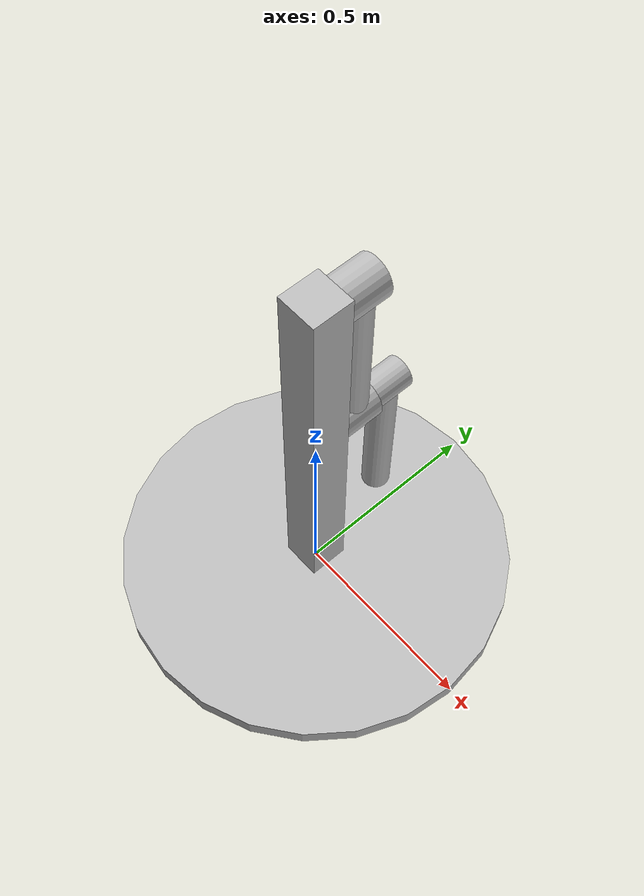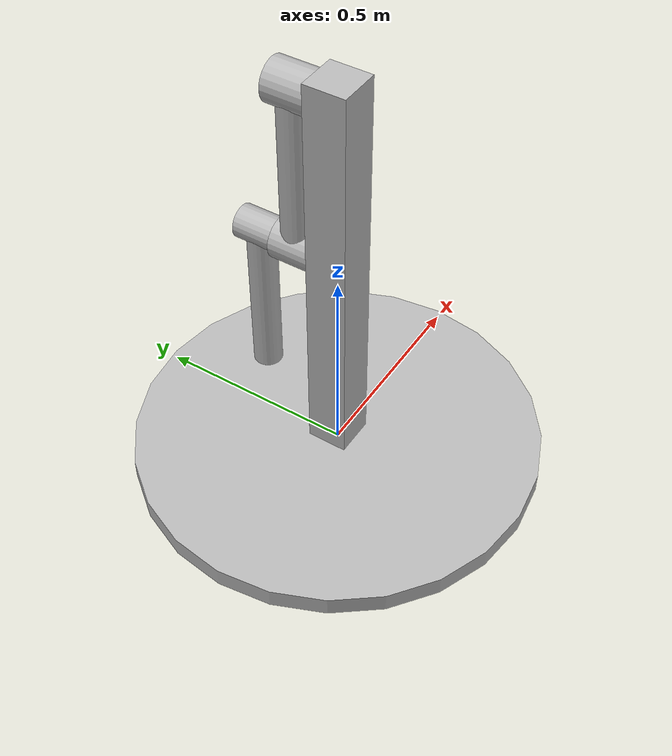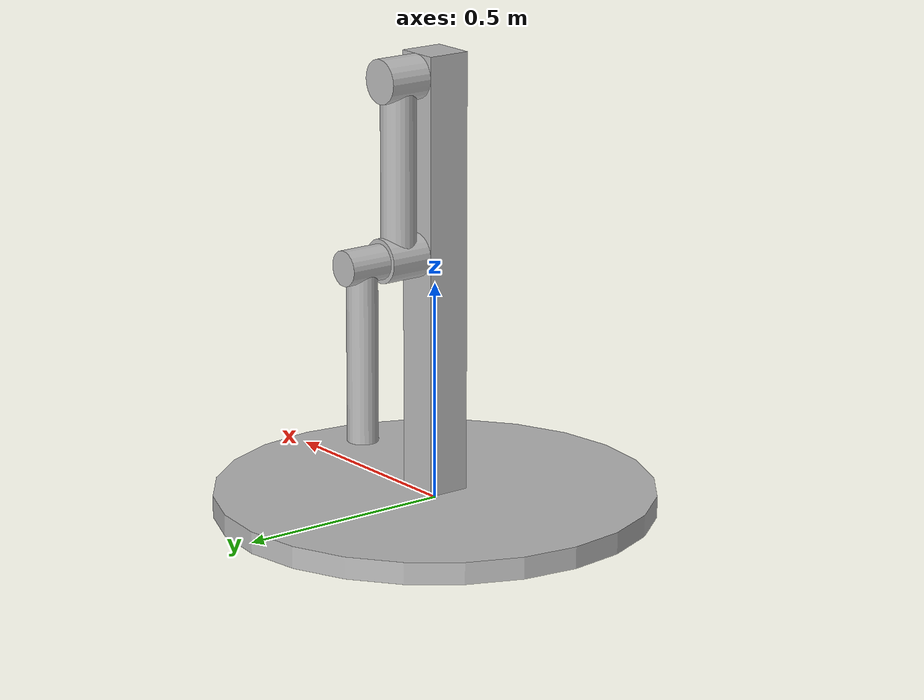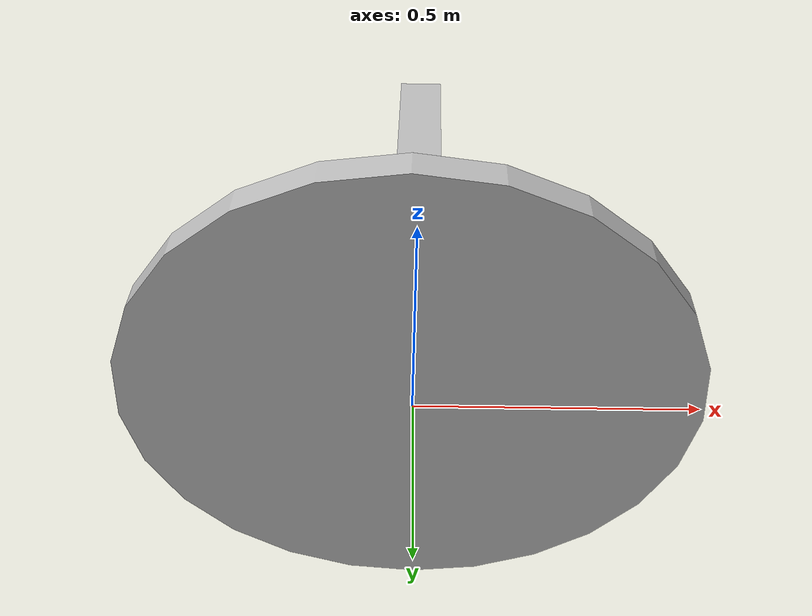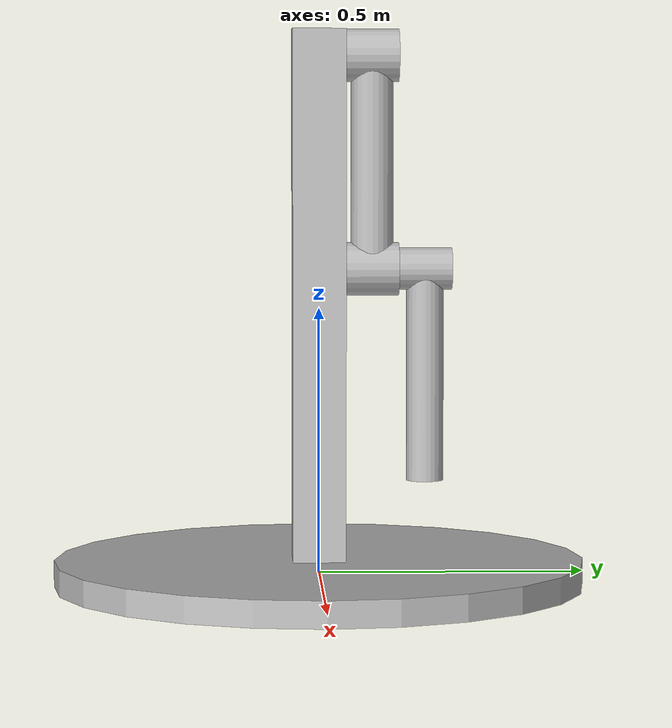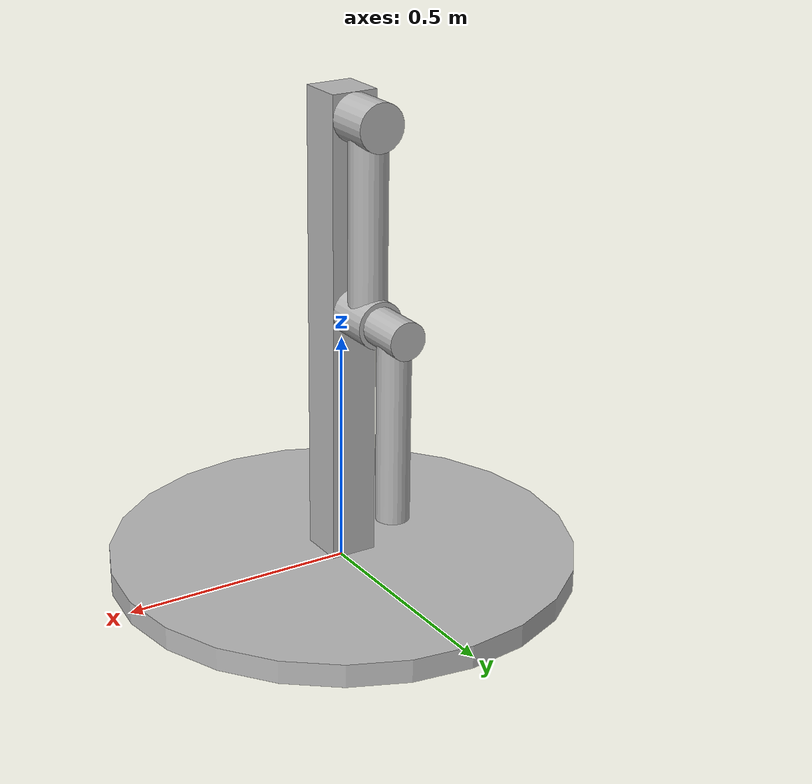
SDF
<?xml version="1.0" encoding="UTF-8"?>
<sdf version="1.9">
    <model name="pendulum">
        <pose>0 0 0 0 0 0</pose>

        <!-- Base -->
        <link name="base">
            <pose>0 0 0 0 0 0</pose>
            <visual name="base_0_visual">
                <geometry>
                    <cylinder>
                        <radius>0.5</radius>
                        <length>0.05</length>
                    </cylinder>
                </geometry>
            </visual>
            <visual name="base_1_visual">
                <pose relative_to="base">0 0 0.525 0 0 0</pose>
                <geometry>
                    <box>
                        <size>0.1 0.1 1</size>
                    </box>
                </geometry>
            </visual>
            <visual name="joint_0_visual">
                <pose relative_to="base">0 0.1 0.975 1.5707 0 0</pose>
                <geometry>
                    <cylinder>
                        <radius>0.05</radius>
                        <length>0.1</length>
                    </cylinder>
                </geometry>
            </visual>
        </link>

        <!-- Link 0 -->
        <link name="link_0">
            <pose relative_to="joint_0">0 -0.2 0 -1.5707 0 0</pose>
            <inertial>
                <mass>3.0</mass>
                <inertia>
                    <ixx>0.0</ixx>
                    <ixy>0.0</ixy>
                    <ixz>0.0</ixz>
                    <iyy>0.0</iyy>
                    <iyz>0.0</iyz>
                    <izz>0.0</izz>
                </inertia>
            </inertial>
            <visual name="link_0_visual_0">
                <geometry>
                    <cylinder>
                        <radius>0.04</radius>
                        <length>0.4</length>
                    </cylinder>
                </geometry>
            </visual>
            <visual name="link_0_visual_1">
                <pose relative_to="link_0">0 0 -0.2 1.5707 0 0</pose>
                <geometry>
                    <cylinder>
                        <radius>0.05</radius>
                        <length>0.1</length>
                    </cylinder>
                </geometry>
            </visual>
            <visual name="joint_1_visual">
                <pose relative_to="link_0">0 0.1 -0.2 1.5707 0 0</pose>
                <geometry>
                    <cylinder>
                        <radius>0.04</radius>
                        <length>0.1</length>
                    </cylinder>
                </geometry>
            </visual>
        </link>

        <!-- Link 1 -->
        <link name="link_1">
            <pose relative_to="joint_1">0 -0.2 0 -1.5707 0 0</pose>
            <inertial>
                <mass>1.0</mass>
                <inertia>
                    <ixx>0.0</ixx>
                    <ixy>0.0</ixy>
                    <ixz>0.0</ixz>
                    <iyy>0.0</iyy>
                    <iyz>0.0</iyz>
                    <izz>0.0</izz>
                </inertia>
            </inertial>
            <visual name="link_1_visual_0">
                <geometry>
                    <cylinder>
                        <radius>0.035</radius>
                        <length>0.4</length>
                    </cylinder>
                </geometry>
            </visual>
        </link>

        <!-- Joints-->
        <joint name="joint_0" type="revolute">
            <pose relative_to="joint_0_frame">0 0 0 0 0 0</pose>
            <parent>base</parent>
            <child>link_0</child>
            <axis>
                <xyz expressed_in="__model__">0 1 0</xyz>
                <dynamics>
                    <damping>0.075</damping>
                </dynamics>
            </axis>
        </joint>
        <joint name="joint_1" type="revolute">
            <pose relative_to="joint_1_frame">0 0 0 0 0 0</pose>
            <parent>link_0</parent>
            <child>link_1</child>
            <axis>
                <xyz expressed_in="__model__">0 1 0</xyz>
                <dynamics>
                    <damping>0.050</damping>
                </dynamics>
            </axis>
        </joint>
        <joint name="world_joint" type="fixed">
            <pose relative_to="base">0 0 0 0 0 0</pose>
            <parent>world</parent>
            <child>base</child>
        </joint>

        <!-- Frames -->
        <frame name="joint_0_frame" attached_to="base">
            <pose relative_to="base">0 0.1 0.975 1.5707 0 0</pose>
        </frame>
        <frame name="joint_1_frame" attached_to="link_0">
            <pose relative_to="link_0">0 0.1 -0.2 1.5707 0 0</pose>
        </frame>
    </model>
</sdf>
